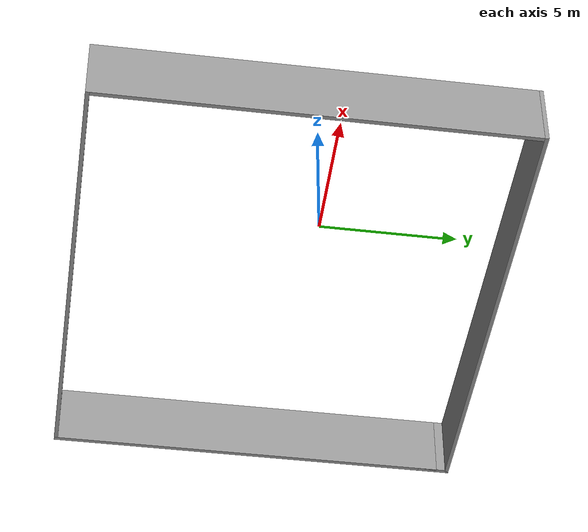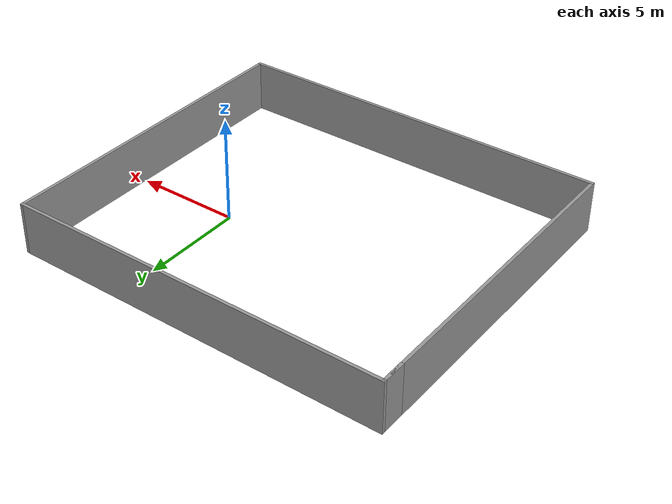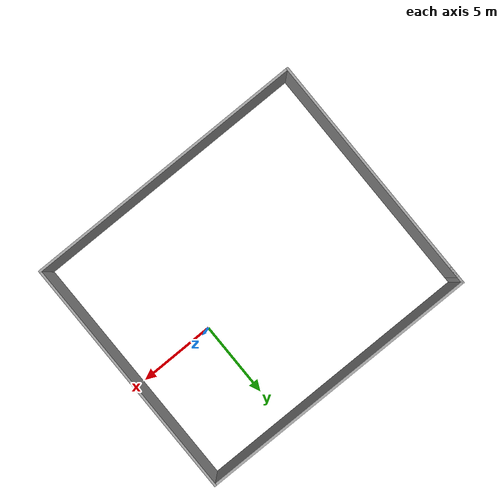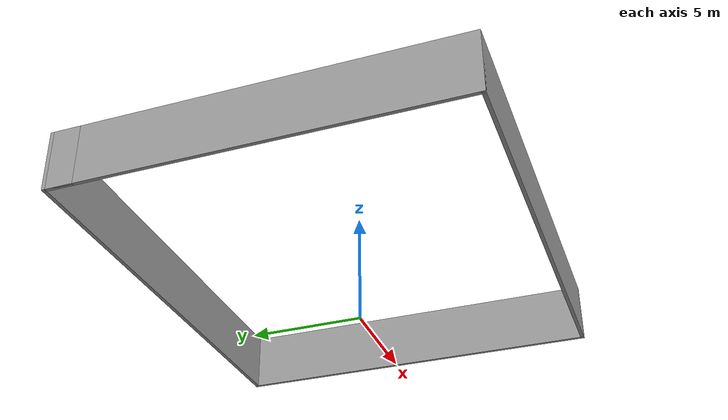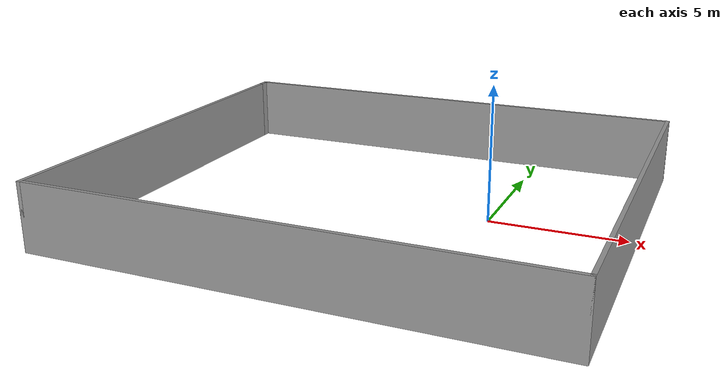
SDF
<?xml version='1.0'?>
<sdf version='1.6'>
  <model name='empty'>
    <pose frame=''>-3.99355 -0.758824 0 0 -0 0</pose>
    <link name='Wall_5'>
      <collision name='Wall_5_Collision'>
        <geometry>
          <box>
            <size>15.5 0.15 2.5</size>
          </box>
        </geometry>
        <pose frame=''>0 0 1.25 0 -0 0</pose>
      </collision>
      <visual name='Wall_5_Visual'>
        <pose frame=''>0 0 1.25 0 -0 0</pose>
        <geometry>
          <box>
            <size>15.5 0.15 2.5</size>
          </box>
        </geometry>
        <material>
          <script>
            <uri>file://media/materials/scripts/gazebo.material</uri>
            <name>Gazebo/Grey</name>
          </script>
          <ambient>1 1 1 1</ambient>
        </material>
        <meta>
          <layer>0</layer>
        </meta>
      </visual>
      <pose frame=''>-9.175 -0.25 0 0 -0 -1.5708</pose>
    </link>
    <link name='Wall_6'>
      <collision name='Wall_6_Collision'>
        <geometry>
          <box>
            <size>18.5 0.15 2.5</size>
          </box>
        </geometry>
        <pose frame=''>0 0 1.25 0 -0 0</pose>
      </collision>
      <visual name='Wall_6_Visual'>
        <pose frame=''>0 0 1.25 0 -0 0</pose>
        <geometry>
          <box>
            <size>18.5 0.15 2.5</size>
          </box>
        </geometry>
        <material>
          <script>
            <uri>file://media/materials/scripts/gazebo.material</uri>
            <name>Gazebo/Grey</name>
          </script>
          <ambient>1 1 1 1</ambient>
        </material>
        <meta>
          <layer>0</layer>
        </meta>
      </visual>
      <pose frame=''>0 -7.925 0 0 -0 0</pose>
    </link>
    <link name='Wall_7'>
      <collision name='Wall_7_Collision'>
        <geometry>
          <box>
            <size>16 0.15 2.5</size>
          </box>
        </geometry>
        <pose frame=''>0 0 1.25 0 -0 0</pose>
      </collision>
      <visual name='Wall_7_Visual'>
        <pose frame=''>0 0 1.25 0 -0 0</pose>
        <geometry>
          <box>
            <size>16 0.15 2.5</size>
          </box>
        </geometry>
        <material>
          <script>
            <uri>file://media/materials/scripts/gazebo.material</uri>
            <name>Gazebo/Grey</name>
          </script>
          <ambient>1 1 1 1</ambient>
        </material>
        <meta>
          <layer>0</layer>
        </meta>
      </visual>
      <pose frame=''>9.175 0 0 0 -0 1.5708</pose>
    </link>
    <link name='Wall_8'>
      <collision name='Wall_8_Collision'>
        <geometry>
          <box>
            <size>18.5 0.15 2.5</size>
          </box>
        </geometry>
        <pose frame=''>0 0 1.25 0 -0 0</pose>
      </collision>
      <visual name='Wall_8_Visual'>
        <pose frame=''>0 0 1.25 0 -0 0</pose>
        <geometry>
          <box>
            <size>18.5 0.15 2.5</size>
          </box>
        </geometry>
        <material>
          <script>
            <uri>file://media/materials/scripts/gazebo.material</uri>
            <name>Gazebo/Grey</name>
          </script>
          <ambient>1 1 1 1</ambient>
        </material>
        <meta>
          <layer>0</layer>
        </meta>
      </visual>
      <pose frame=''>0 7.925 0 0 -0 3.14159</pose>
    </link>
    <link name='Wall_9'>
      <collision name='Wall_9_Collision'>
        <geometry>
          <box>
            <size>1.25 0.15 2.5</size>
          </box>
        </geometry>
        <pose frame=''>0 0 1.25 0 -0 0</pose>
      </collision>
      <visual name='Wall_9_Visual'>
        <pose frame=''>0 0 1.25 0 -0 0</pose>
        <geometry>
          <box>
            <size>1.25 0.15 2.5</size>
          </box>
        </geometry>
        <material>
          <script>
            <uri>file://media/materials/scripts/gazebo.material</uri>
            <name>Gazebo/Grey</name>
          </script>
          <ambient>1 1 1 1</ambient>
        </material>
        <meta>
          <layer>0</layer>
        </meta>
      </visual>
      <pose frame=''>-9.175 7.375 0 0 -0 -1.5708</pose>
    </link>
    <static>1</static>
  </model>
</sdf>
